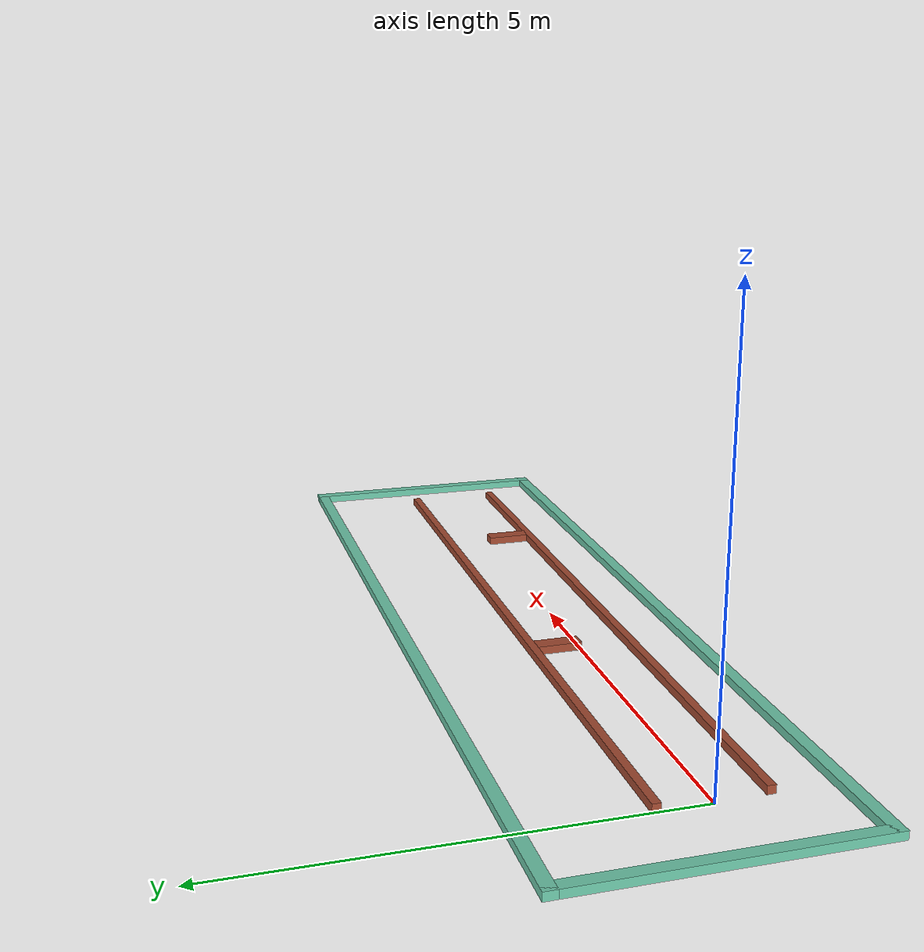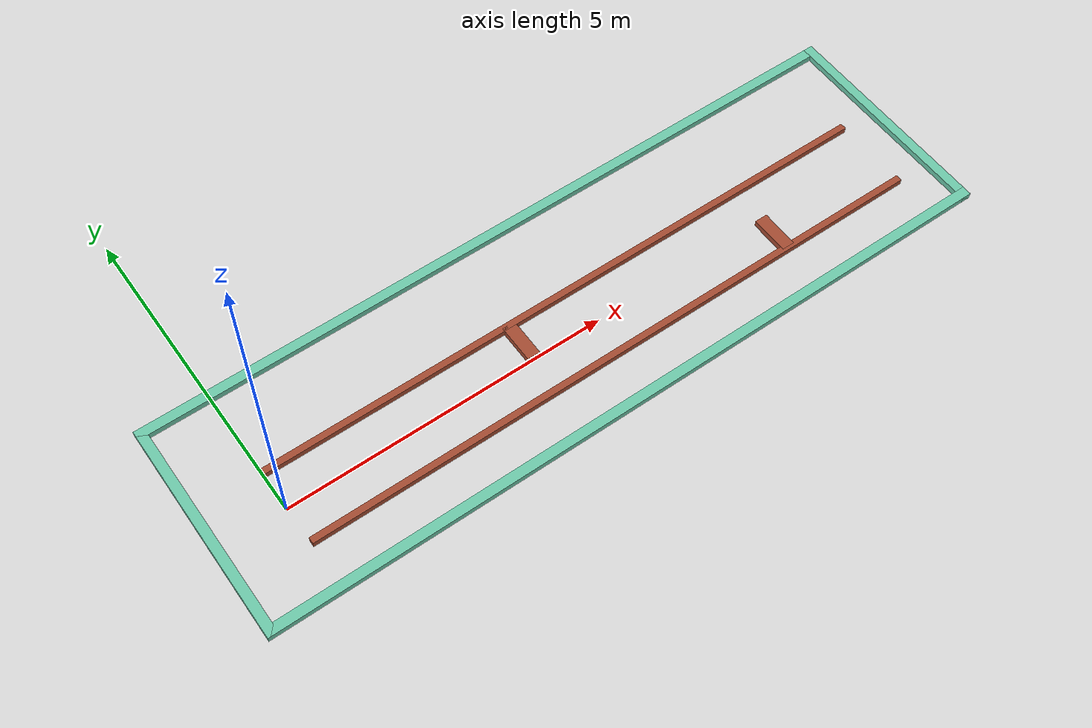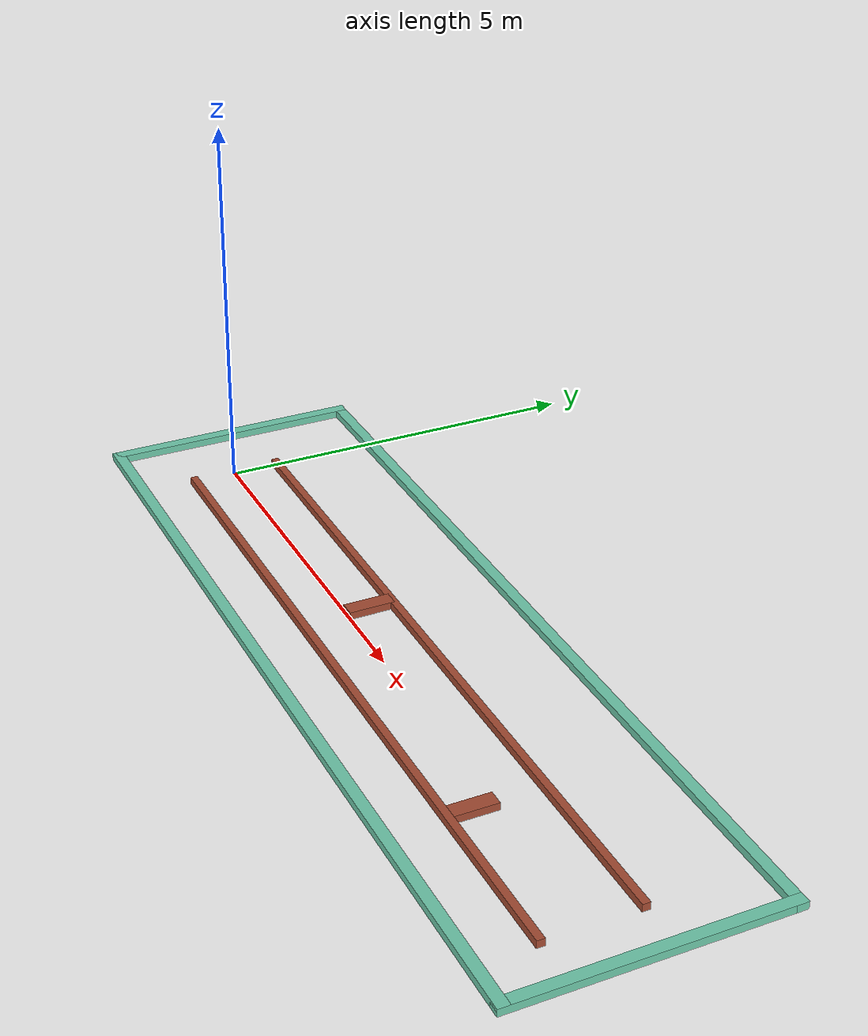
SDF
<?xml version='1.0'?>
<sdf version='1.7'>
  <model name='Racing_Track'>
    <pose>4.784 0.336 0 0 -0 0</pose>
    <link name='Wall_1'>
      <collision name='Wall_1_Collision'>
        <geometry>
          <box>
            <size>10 0.1 0.1</size>
          </box>
        </geometry>
        <pose>0 0 0.05 0 -0 0</pose>
      </collision>
      <visual name='Wall_1_Visual'>
        <pose>0 0 0.05 0 -0 0</pose>
        <geometry>
          <box>
            <size>10 0.1 0.1</size>
          </box>
        </geometry>
        <material>
          <script>
            <uri>file://media/materials/scripts/gazebo.material</uri>
            <name>Gazebo/Bricks</name>
          </script>
          <ambient>1 1 1 1</ambient>
        </material>
        <meta>
          <layer>0</layer>
        </meta>
      </visual>
      <pose>0.216 0.264 0 0 -0 0</pose>
    </link>
    <link name='Wall_14'>
      <collision name='Wall_14_Collision'>
        <geometry>
          <box>
            <size>3.5 0.15 0.1</size>
          </box>
        </geometry>
        <pose>0 0 0.05 0 -0 0</pose>
      </collision>
      <visual name='Wall_14_Visual'>
        <pose>0 0 0.05 0 -0 0</pose>
        <geometry>
          <box>
            <size>3.5 0.15 0.1</size>
          </box>
        </geometry>
        <material>
          <script>
            <uri>file://media/materials/scripts/gazebo.material</uri>
            <name>Gazebo/Grey</name>
          </script>
          <ambient>0.435294 0.796078 0.67451 1</ambient>
        </material>
        <meta>
          <layer>0</layer>
        </meta>
      </visual>
      <pose>-5.8 0 0 0 -0 -1.5708</pose>
    </link>
    <link name='Wall_15'>
      <collision name='Wall_15_Collision'>
        <geometry>
          <box>
            <size>11.75 0.15 0.1</size>
          </box>
        </geometry>
        <pose>0 0 0.05 0 -0 0</pose>
      </collision>
      <visual name='Wall_15_Visual'>
        <pose>0 0 0.05 0 -0 0</pose>
        <geometry>
          <box>
            <size>11.75 0.15 0.1</size>
          </box>
        </geometry>
        <material>
          <script>
            <uri>file://media/materials/scripts/gazebo.material</uri>
            <name>Gazebo/Grey</name>
          </script>
          <ambient>0.435294 0.796078 0.67451 1</ambient>
        </material>
        <meta>
          <layer>0</layer>
        </meta>
      </visual>
      <pose>-0 -1.675 0 0 -0 0</pose>
    </link>
    <link name='Wall_16'>
      <collision name='Wall_16_Collision'>
        <geometry>
          <box>
            <size>3.5 0.15 0.1</size>
          </box>
        </geometry>
        <pose>0 0 0.05 0 -0 0</pose>
      </collision>
      <visual name='Wall_16_Visual'>
        <pose>0 0 0.05 0 -0 0</pose>
        <geometry>
          <box>
            <size>3.5 0.15 0.1</size>
          </box>
        </geometry>
        <material>
          <script>
            <uri>file://media/materials/scripts/gazebo.material</uri>
            <name>Gazebo/Grey</name>
          </script>
          <ambient>0.435294 0.796078 0.67451 1</ambient>
        </material>
        <meta>
          <layer>0</layer>
        </meta>
      </visual>
      <pose>5.8 0 0 0 -0 1.5708</pose>
    </link>
    <link name='Wall_17'>
      <collision name='Wall_17_Collision'>
        <geometry>
          <box>
            <size>11.75 0.15 0.1</size>
          </box>
        </geometry>
        <pose>0 0 0.05 0 -0 0</pose>
      </collision>
      <visual name='Wall_17_Visual'>
        <pose>0 0 0.05 0 -0 0</pose>
        <geometry>
          <box>
            <size>11.75 0.15 0.1</size>
          </box>
        </geometry>
        <material>
          <script>
            <uri>file://media/materials/scripts/gazebo.material</uri>
            <name>Gazebo/Grey</name>
          </script>
          <ambient>0.435294 0.796078 0.67451 1</ambient>
        </material>
        <meta>
          <layer>0</layer>
        </meta>
      </visual>
      <pose>-0 1.675 0 0 -0 3.14159</pose>
    </link>
    <link name='Wall_3'>
      <collision name='Wall_3_Collision'>
        <geometry>
          <box>
            <size>10 0.1 0.1</size>
          </box>
        </geometry>
        <pose>0 0 0.05 0 -0 0</pose>
      </collision>
      <visual name='Wall_3_Visual'>
        <pose>0 0 0.05 0 -0 0</pose>
        <geometry>
          <box>
            <size>10 0.1 0.1</size>
          </box>
        </geometry>
        <material>
          <script>
            <uri>file://media/materials/scripts/gazebo.material</uri>
            <name>Gazebo/Bricks</name>
          </script>
          <ambient>1 1 1 1</ambient>
        </material>
        <meta>
          <layer>0</layer>
        </meta>
      </visual>
      <pose>0.22915 -0.936 0 0 -0 0</pose>
    </link>
    <link name='Wall_5'>
      <collision name='Wall_5_Collision'>
        <geometry>
          <box>
            <size>0.6 0.2 0.1</size>
          </box>
        </geometry>
        <pose>0 0 0.05 0 -0 0</pose>
      </collision>
      <visual name='Wall_5_Visual'>
        <pose>0 0 0.05 0 -0 0</pose>
        <geometry>
          <box>
            <size>0.6 0.2 0.1</size>
          </box>
        </geometry>
        <material>
          <script>
            <uri>file://media/materials/scripts/gazebo.material</uri>
            <name>Gazebo/Bricks</name>
          </script>
          <ambient>1 1 1 1</ambient>
        </material>
        <meta>
          <layer>0</layer>
        </meta>
      </visual>
      <pose>-0.884 -0.036 0 0 -0 -1.5708</pose>
    </link>
    <link name='Wall_7'>
      <collision name='Wall_7_Collision'>
        <geometry>
          <box>
            <size>0.6 0.2 0.1</size>
          </box>
        </geometry>
        <pose>0 0 0.05 0 -0 0</pose>
      </collision>
      <visual name='Wall_7_Visual'>
        <pose>0 0 0.05 0 -0 0</pose>
        <geometry>
          <box>
            <size>0.6 0.2 0.1</size>
          </box>
        </geometry>
        <material>
          <script>
            <uri>file://media/materials/scripts/gazebo.material</uri>
            <name>Gazebo/Bricks</name>
          </script>
          <ambient>1 1 1 1</ambient>
        </material>
        <meta>
          <layer>0</layer>
        </meta>
      </visual>
      <pose>3.116 -0.636 0 0 -0 1.5708</pose>
    </link>
    <static>1</static>
  </model>
</sdf>
